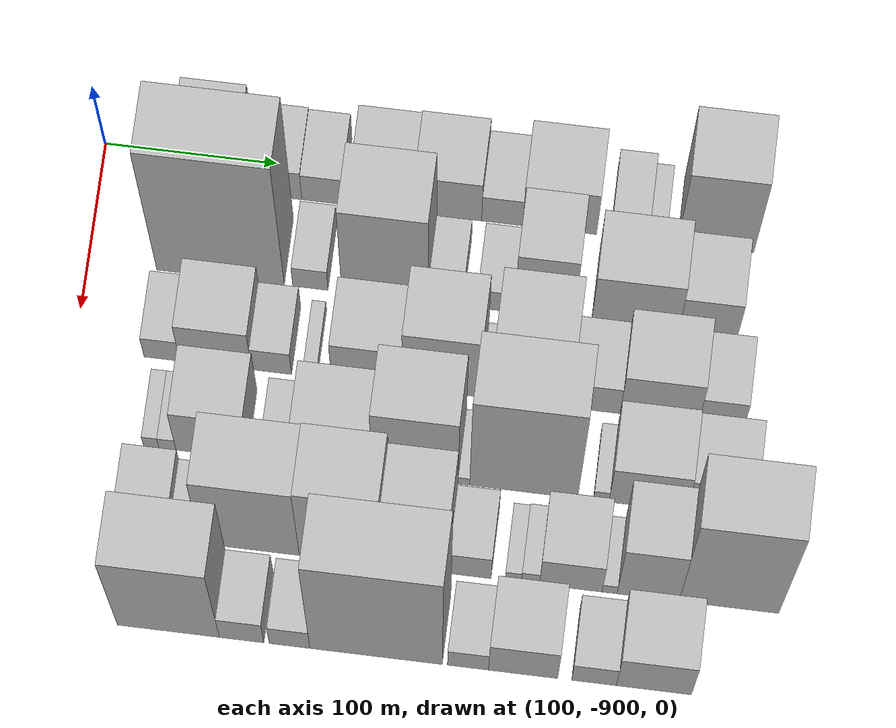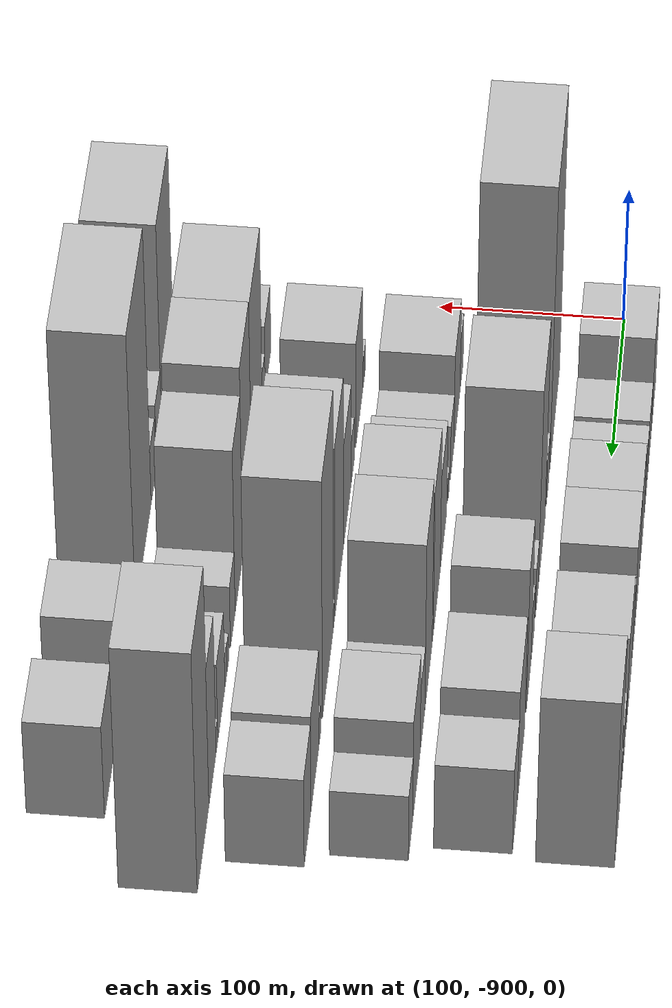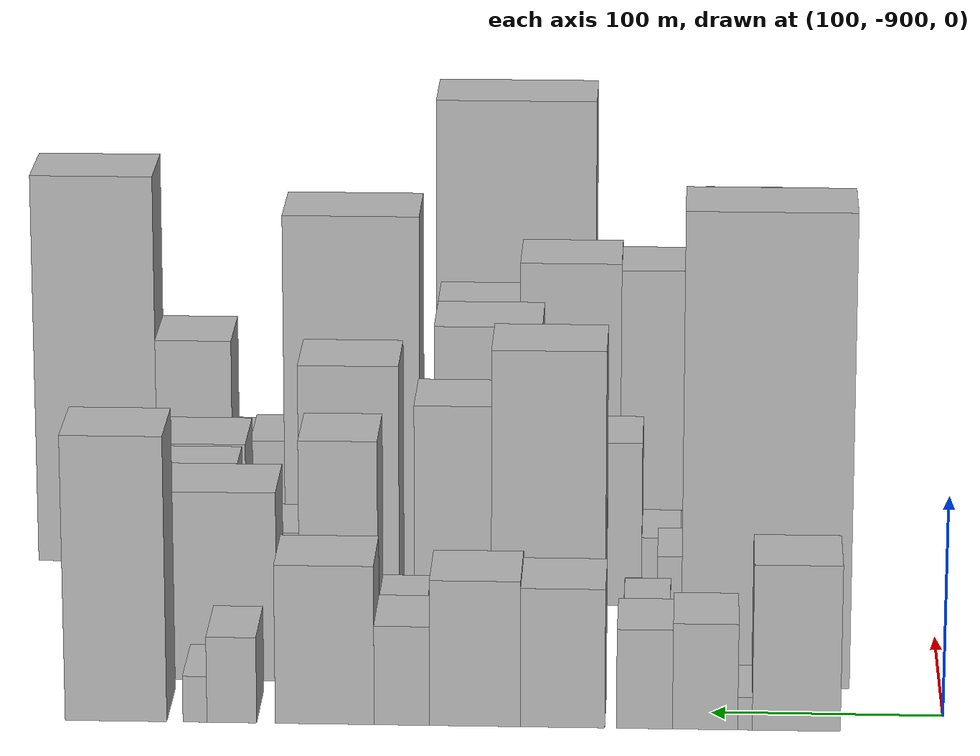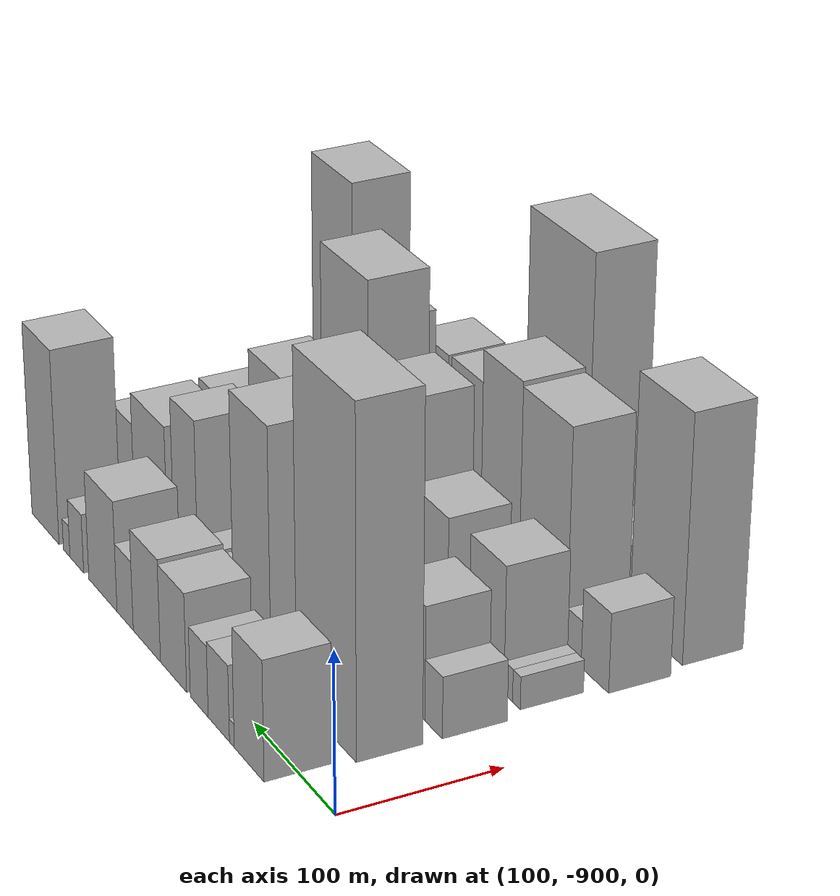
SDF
<sdf version="1.6">
 <world name="default">
  <model name="building_1">
   <static>1</static>
   <pose>100.0000 -836.1101 0 0.000000 0.000000 0.000000</pose>
   <link name="link">
    <pose>0 0 37.50 0 0 0</pose>
    <collision name="collision"><geometry><box><size>40.0000 37.7797 75.0000</size></box></geometry></collision>
    <visual name="visual">
     <cast_shadows>0</cast_shadows>
     <geometry><box><size>40.0000 37.7797 75.0000</size></box></geometry>
     <material>
      <script>
       <uri>model://HANNAS_wall/materials/scripts</uri>
       <uri>model://HANNAS_wall/materials/textures</uri>
       <name>vrc/HANNAS_wall</name>
      </script>
     </material>
    </visual>
   </link>
  </model>
  <model name="building_2">
   <static>1</static>
   <pose>100.0000 -814.1010 0 0.000000 0.000000 0.000000</pose>
   <link name="link">
    <pose>0 0 7.50 0 0 0</pose>
    <collision name="collision"><geometry><box><size>40.0000 6.2386 15.0000</size></box></geometry></collision>
    <visual name="visual">
     <cast_shadows>0</cast_shadows>
     <geometry><box><size>40.0000 6.2386 15.0000</size></box></geometry>
     <material>
      <script>
       <uri>model://HANNAS_wall/materials/scripts</uri>
       <uri>model://HANNAS_wall/materials/textures</uri>
       <name>vrc/HANNAS_wall</name>
      </script>
     </material>
    </visual>
   </link>
  </model>
  <model name="building_3">
   <static>1</static>
   <pose>100.0000 -797.0006 0 0.000000 0.000000 0.000000</pose>
   <link name="link">
    <pose>0 0 24.00 0 0 0</pose>
    <collision name="collision"><geometry><box><size>40.0000 27.9622 48.0000</size></box></geometry></collision>
    <visual name="visual">
     <cast_shadows>0</cast_shadows>
     <geometry><box><size>40.0000 27.9622 48.0000</size></box></geometry>
     <material>
      <script>
       <uri>model://HANNAS_wall/materials/scripts</uri>
       <uri>model://HANNAS_wall/materials/textures</uri>
       <name>vrc/HANNAS_wall</name>
      </script>
     </material>
    </visual>
   </link>
  </model>
  <model name="building_4">
   <static>1</static>
   <pose>100.0000 -770.9976 0 0.000000 0.000000 0.000000</pose>
   <link name="link">
    <pose>0 0 22.50 0 0 0</pose>
    <collision name="collision"><geometry><box><size>40.0000 24.0437 45.0000</size></box></geometry></collision>
    <visual name="visual">
     <cast_shadows>0</cast_shadows>
     <geometry><box><size>40.0000 24.0437 45.0000</size></box></geometry>
     <material>
      <script>
       <uri>model://HANNAS_wall/materials/scripts</uri>
       <uri>model://HANNAS_wall/materials/textures</uri>
       <name>vrc/HANNAS_wall</name>
      </script>
     </material>
    </visual>
   </link>
  </model>
  <model name="building_5">
   <static>1</static>
   <pose>100.0000 -735.8381 0 0.000000 0.000000 0.000000</pose>
   <link name="link">
    <pose>0 0 31.50 0 0 0</pose>
    <collision name="collision"><geometry><box><size>40.0000 36.2753 63.0000</size></box></geometry></collision>
    <visual name="visual">
     <cast_shadows>0</cast_shadows>
     <geometry><box><size>40.0000 36.2753 63.0000</size></box></geometry>
     <material>
      <script>
       <uri>model://HANNAS_wall/materials/scripts</uri>
       <uri>model://HANNAS_wall/materials/textures</uri>
       <name>vrc/HANNAS_wall</name>
      </script>
     </material>
    </visual>
   </link>
  </model>
  <model name="building_6">
   <static>1</static>
   <pose>100.0000 -698.1796 0 0.000000 0.000000 0.000000</pose>
   <link name="link">
    <pose>0 0 33.00 0 0 0</pose>
    <collision name="collision"><geometry><box><size>40.0000 39.0418 66.0000</size></box></geometry></collision>
    <visual name="visual">
     <cast_shadows>0</cast_shadows>
     <geometry><box><size>40.0000 39.0418 66.0000</size></box></geometry>
     <material>
      <script>
       <uri>model://HANNAS_wall/materials/scripts</uri>
       <uri>model://HANNAS_wall/materials/textures</uri>
       <name>vrc/HANNAS_wall</name>
      </script>
     </material>
    </visual>
   </link>
  </model>
  <model name="building_7">
   <static>1</static>
   <pose>100.0000 -666.7290 0 0.000000 0.000000 0.000000</pose>
   <link name="link">
    <pose>0 0 22.50 0 0 0</pose>
    <collision name="collision"><geometry><box><size>40.0000 23.8593 45.0000</size></box></geometry></collision>
    <visual name="visual">
     <cast_shadows>0</cast_shadows>
     <geometry><box><size>40.0000 23.8593 45.0000</size></box></geometry>
     <material>
      <script>
       <uri>model://HANNAS_wall/materials/scripts</uri>
       <uri>model://HANNAS_wall/materials/textures</uri>
       <name>vrc/HANNAS_wall</name>
      </script>
     </material>
    </visual>
   </link>
  </model>
  <model name="building_8">
   <static>1</static>
   <pose>100.0000 -633.4664 0 0.000000 0.000000 0.000000</pose>
   <link name="link">
    <pose>0 0 36.00 0 0 0</pose>
    <collision name="collision"><geometry><box><size>40.0000 42.6658 72.0000</size></box></geometry></collision>
    <visual name="visual">
     <cast_shadows>0</cast_shadows>
     <geometry><box><size>40.0000 42.6658 72.0000</size></box></geometry>
     <material>
      <script>
       <uri>model://HANNAS_wall/materials/scripts</uri>
       <uri>model://HANNAS_wall/materials/textures</uri>
       <name>vrc/HANNAS_wall</name>
      </script>
     </material>
    </visual>
   </link>
  </model>
  <model name="building_9">
   <static>1</static>
   <pose>100.0000 -593.3908 0 0.000000 0.000000 0.000000</pose>
   <link name="link">
    <pose>0 0 19.50 0 0 0</pose>
    <collision name="collision"><geometry><box><size>40.0000 21.4854 39.0000</size></box></geometry></collision>
    <visual name="visual">
     <cast_shadows>0</cast_shadows>
     <geometry><box><size>40.0000 21.4854 39.0000</size></box></geometry>
     <material>
      <script>
       <uri>model://HANNAS_wall/materials/scripts</uri>
       <uri>model://HANNAS_wall/materials/textures</uri>
       <name>vrc/HANNAS_wall</name>
      </script>
     </material>
    </visual>
   </link>
  </model>
  <model name="building_10">
   <static>1</static>
   <pose>100.0000 -577.4798 0 0.000000 0.000000 0.000000</pose>
   <link name="link">
    <pose>0 0 10.50 0 0 0</pose>
    <collision name="collision"><geometry><box><size>40.0000 10.3366 21.0000</size></box></geometry></collision>
    <visual name="visual">
     <cast_shadows>0</cast_shadows>
     <geometry><box><size>40.0000 10.3366 21.0000</size></box></geometry>
     <material>
      <script>
       <uri>model://HANNAS_wall/materials/scripts</uri>
       <uri>model://HANNAS_wall/materials/textures</uri>
       <name>vrc/HANNAS_wall</name>
      </script>
     </material>
    </visual>
   </link>
  </model>
  <model name="building_11">
   <static>1</static>
   <pose>100.0000 -543.3504 0 0.000000 0.000000 0.000000</pose>
   <link name="link">
    <pose>0 0 64.50 0 0 0</pose>
    <collision name="collision"><geometry><box><size>40.0000 43.9221 129.0000</size></box></geometry></collision>
    <visual name="visual">
     <cast_shadows>0</cast_shadows>
     <geometry><box><size>40.0000 43.9221 129.0000</size></box></geometry>
     <material>
      <script>
       <uri>model://HANNAS_wall/materials/scripts</uri>
       <uri>model://HANNAS_wall/materials/textures</uri>
       <name>vrc/HANNAS_wall</name>
      </script>
     </material>
    </visual>
   </link>
  </model>
  <model name="building_50">
   <static>1</static>
   <pose>152.0000 -823.1625 0 0.000000 0.000000 0.000000</pose>
   <link name="link">
    <pose>0 0 108.00 0 0 0</pose>
    <collision name="collision"><geometry><box><size>40.0000 73.6750 216.0000</size></box></geometry></collision>
    <visual name="visual">
     <cast_shadows>0</cast_shadows>
     <geometry><box><size>40.0000 73.6750 216.0000</size></box></geometry>
     <material>
      <script>
       <uri>model://HANNAS_wall/materials/scripts</uri>
       <uri>model://HANNAS_wall/materials/textures</uri>
       <name>vrc/HANNAS_wall</name>
      </script>
     </material>
    </visual>
   </link>
  </model>
  <model name="building_51">
   <static>1</static>
   <pose>152.0000 -771.1802 0 0.000000 0.000000 0.000000</pose>
   <link name="link">
    <pose>0 0 18.00 0 0 0</pose>
    <collision name="collision"><geometry><box><size>40.0000 20.2896 36.0000</size></box></geometry></collision>
    <visual name="visual">
     <cast_shadows>0</cast_shadows>
     <geometry><box><size>40.0000 20.2896 36.0000</size></box></geometry>
     <material>
      <script>
       <uri>model://HANNAS_wall/materials/scripts</uri>
       <uri>model://HANNAS_wall/materials/textures</uri>
       <name>vrc/HANNAS_wall</name>
      </script>
     </material>
    </visual>
   </link>
  </model>
  <model name="building_52">
   <static>1</static>
   <pose>152.0000 -728.1280 0 0.000000 0.000000 0.000000</pose>
   <link name="link">
    <pose>0 0 76.50 0 0 0</pose>
    <collision name="collision"><geometry><box><size>40.0000 49.8148 153.0000</size></box></geometry></collision>
    <visual name="visual">
     <cast_shadows>0</cast_shadows>
     <geometry><box><size>40.0000 49.8148 153.0000</size></box></geometry>
     <material>
      <script>
       <uri>model://HANNAS_wall/materials/scripts</uri>
       <uri>model://HANNAS_wall/materials/textures</uri>
       <name>vrc/HANNAS_wall</name>
      </script>
     </material>
    </visual>
   </link>
  </model>
  <model name="building_53">
   <static>1</static>
   <pose>152.0000 -693.1054 0 0.000000 0.000000 0.000000</pose>
   <link name="link">
    <pose>0 0 19.50 0 0 0</pose>
    <collision name="collision"><geometry><box><size>40.0000 20.2304 39.0000</size></box></geometry></collision>
    <visual name="visual">
     <cast_shadows>0</cast_shadows>
     <geometry><box><size>40.0000 20.2304 39.0000</size></box></geometry>
     <material>
      <script>
       <uri>model://HANNAS_wall/materials/scripts</uri>
       <uri>model://HANNAS_wall/materials/textures</uri>
       <name>vrc/HANNAS_wall</name>
      </script>
     </material>
    </visual>
   </link>
  </model>
  <model name="building_54">
   <static>1</static>
   <pose>152.0000 -664.2839 0 0.000000 0.000000 0.000000</pose>
   <link name="link">
    <pose>0 0 18.00 0 0 0</pose>
    <collision name="collision"><geometry><box><size>40.0000 21.4125 36.0000</size></box></geometry></collision>
    <visual name="visual">
     <cast_shadows>0</cast_shadows>
     <geometry><box><size>40.0000 21.4125 36.0000</size></box></geometry>
     <material>
      <script>
       <uri>model://HANNAS_wall/materials/scripts</uri>
       <uri>model://HANNAS_wall/materials/textures</uri>
       <name>vrc/HANNAS_wall</name>
      </script>
     </material>
    </visual>
   </link>
  </model>
  <model name="building_55">
   <static>1</static>
   <pose>152.0000 -636.3601 0 0.000000 0.000000 0.000000</pose>
   <link name="link">
    <pose>0 0 55.50 0 0 0</pose>
    <collision name="collision"><geometry><box><size>40.0000 34.4351 111.0000</size></box></geometry></collision>
    <visual name="visual">
     <cast_shadows>0</cast_shadows>
     <geometry><box><size>40.0000 34.4351 111.0000</size></box></geometry>
     <material>
      <script>
       <uri>model://HANNAS_wall/materials/scripts</uri>
       <uri>model://HANNAS_wall/materials/textures</uri>
       <name>vrc/HANNAS_wall</name>
      </script>
     </material>
    </visual>
   </link>
  </model>
  <model name="building_56">
   <static>1</static>
   <pose>152.0000 -584.1298 0 0.000000 0.000000 0.000000</pose>
   <link name="link">
    <pose>0 0 43.50 0 0 0</pose>
    <collision name="collision"><geometry><box><size>40.0000 50.0255 87.0000</size></box></geometry></collision>
    <visual name="visual">
     <cast_shadows>0</cast_shadows>
     <geometry><box><size>40.0000 50.0255 87.0000</size></box></geometry>
     <material>
      <script>
       <uri>model://HANNAS_wall/materials/scripts</uri>
       <uri>model://HANNAS_wall/materials/textures</uri>
       <name>vrc/HANNAS_wall</name>
      </script>
     </material>
    </visual>
   </link>
  </model>
  <model name="building_57">
   <static>1</static>
   <pose>152.0000 -542.3534 0 0.000000 0.000000 0.000000</pose>
   <link name="link">
    <pose>0 0 33.00 0 0 0</pose>
    <collision name="collision"><geometry><box><size>40.0000 33.5274 66.0000</size></box></geometry></collision>
    <visual name="visual">
     <cast_shadows>0</cast_shadows>
     <geometry><box><size>40.0000 33.5274 66.0000</size></box></geometry>
     <material>
      <script>
       <uri>model://HANNAS_wall/materials/scripts</uri>
       <uri>model://HANNAS_wall/materials/textures</uri>
       <name>vrc/HANNAS_wall</name>
      </script>
     </material>
    </visual>
   </link>
  </model>
  <model name="building_102">
   <static>1</static>
   <pose>204.0000 -849.7904 0 0.000000 0.000000 0.000000</pose>
   <link name="link">
    <pose>0 0 19.50 0 0 0</pose>
    <collision name="collision"><geometry><box><size>40.0000 20.4192 39.0000</size></box></geometry></collision>
    <visual name="visual">
     <cast_shadows>0</cast_shadows>
     <geometry><box><size>40.0000 20.4192 39.0000</size></box></geometry>
     <material>
      <script>
       <uri>model://HANNAS_wall/materials/scripts</uri>
       <uri>model://HANNAS_wall/materials/textures</uri>
       <name>vrc/HANNAS_wall</name>
      </script>
     </material>
    </visual>
   </link>
  </model>
  <model name="building_103">
   <static>1</static>
   <pose>204.0000 -818.8654 0 0.000000 0.000000 0.000000</pose>
   <link name="link">
    <pose>0 0 36.00 0 0 0</pose>
    <collision name="collision"><geometry><box><size>40.0000 41.4309 72.0000</size></box></geometry></collision>
    <visual name="visual">
     <cast_shadows>0</cast_shadows>
     <geometry><box><size>40.0000 41.4309 72.0000</size></box></geometry>
     <material>
      <script>
       <uri>model://HANNAS_wall/materials/scripts</uri>
       <uri>model://HANNAS_wall/materials/textures</uri>
       <name>vrc/HANNAS_wall</name>
      </script>
     </material>
    </visual>
   </link>
  </model>
  <model name="building_104">
   <static>1</static>
   <pose>204.0000 -786.6893 0 0.000000 0.000000 0.000000</pose>
   <link name="link">
    <pose>0 0 21.00 0 0 0</pose>
    <collision name="collision"><geometry><box><size>40.0000 22.9213 42.0000</size></box></geometry></collision>
    <visual name="visual">
     <cast_shadows>0</cast_shadows>
     <geometry><box><size>40.0000 22.9213 42.0000</size></box></geometry>
     <material>
      <script>
       <uri>model://HANNAS_wall/materials/scripts</uri>
       <uri>model://HANNAS_wall/materials/textures</uri>
       <name>vrc/HANNAS_wall</name>
      </script>
     </material>
    </visual>
   </link>
  </model>
  <model name="building_105">
   <static>1</static>
   <pose>204.0000 -764.2685 0 0.000000 0.000000 0.000000</pose>
   <link name="link">
    <pose>0 0 9.00 0 0 0</pose>
    <collision name="collision"><geometry><box><size>40.0000 7.9204 18.0000</size></box></geometry></collision>
    <visual name="visual">
     <cast_shadows>0</cast_shadows>
     <geometry><box><size>40.0000 7.9204 18.0000</size></box></geometry>
     <material>
      <script>
       <uri>model://HANNAS_wall/materials/scripts</uri>
       <uri>model://HANNAS_wall/materials/textures</uri>
       <name>vrc/HANNAS_wall</name>
      </script>
     </material>
    </visual>
   </link>
  </model>
  <model name="building_106">
   <static>1</static>
   <pose>204.0000 -731.7909 0 0.000000 0.000000 0.000000</pose>
   <link name="link">
    <pose>0 0 36.00 0 0 0</pose>
    <collision name="collision"><geometry><box><size>40.0000 41.0349 72.0000</size></box></geometry></collision>
    <visual name="visual">
     <cast_shadows>0</cast_shadows>
     <geometry><box><size>40.0000 41.0349 72.0000</size></box></geometry>
     <material>
      <script>
       <uri>model://HANNAS_wall/materials/scripts</uri>
       <uri>model://HANNAS_wall/materials/textures</uri>
       <name>vrc/HANNAS_wall</name>
      </script>
     </material>
    </visual>
   </link>
  </model>
  <model name="building_107">
   <static>1</static>
   <pose>204.0000 -689.0931 0 0.000000 0.000000 0.000000</pose>
   <link name="link">
    <pose>0 0 55.50 0 0 0</pose>
    <collision name="collision"><geometry><box><size>40.0000 44.3606 111.0000</size></box></geometry></collision>
    <visual name="visual">
     <cast_shadows>0</cast_shadows>
     <geometry><box><size>40.0000 44.3606 111.0000</size></box></geometry>
     <material>
      <script>
       <uri>model://HANNAS_wall/materials/scripts</uri>
       <uri>model://HANNAS_wall/materials/textures</uri>
       <name>vrc/HANNAS_wall</name>
      </script>
     </material>
    </visual>
   </link>
  </model>
  <model name="building_108">
   <static>1</static>
   <pose>204.0000 -663.5158 0 0.000000 0.000000 0.000000</pose>
   <link name="link">
    <pose>0 0 7.50 0 0 0</pose>
    <collision name="collision"><geometry><box><size>40.0000 6.7940 15.0000</size></box></geometry></collision>
    <visual name="visual">
     <cast_shadows>0</cast_shadows>
     <geometry><box><size>40.0000 6.7940 15.0000</size></box></geometry>
     <material>
      <script>
       <uri>model://HANNAS_wall/materials/scripts</uri>
       <uri>model://HANNAS_wall/materials/textures</uri>
       <name>vrc/HANNAS_wall</name>
      </script>
     </material>
    </visual>
   </link>
  </model>
  <model name="building_109">
   <static>1</static>
   <pose>204.0000 -637.7748 0 0.000000 0.000000 0.000000</pose>
   <link name="link">
    <pose>0 0 64.50 0 0 0</pose>
    <collision name="collision"><geometry><box><size>40.0000 44.6881 129.0000</size></box></geometry></collision>
    <visual name="visual">
     <cast_shadows>0</cast_shadows>
     <geometry><box><size>40.0000 44.6881 129.0000</size></box></geometry>
     <material>
      <script>
       <uri>model://HANNAS_wall/materials/scripts</uri>
       <uri>model://HANNAS_wall/materials/textures</uri>
       <name>vrc/HANNAS_wall</name>
      </script>
     </material>
    </visual>
   </link>
  </model>
  <model name="building_110">
   <static>1</static>
   <pose>204.0000 -601.2230 0 0.000000 0.000000 0.000000</pose>
   <link name="link">
    <pose>0 0 25.50 0 0 0</pose>
    <collision name="collision"><geometry><box><size>40.0000 28.4156 51.0000</size></box></geometry></collision>
    <visual name="visual">
     <cast_shadows>0</cast_shadows>
     <geometry><box><size>40.0000 28.4156 51.0000</size></box></geometry>
     <material>
      <script>
       <uri>model://HANNAS_wall/materials/scripts</uri>
       <uri>model://HANNAS_wall/materials/textures</uri>
       <name>vrc/HANNAS_wall</name>
      </script>
     </material>
    </visual>
   </link>
  </model>
  <model name="building_111">
   <static>1</static>
   <pose>204.0000 -564.5349 0 0.000000 0.000000 0.000000</pose>
   <link name="link">
    <pose>0 0 39.00 0 0 0</pose>
    <collision name="collision"><geometry><box><size>40.0000 44.9606 78.0000</size></box></geometry></collision>
    <visual name="visual">
     <cast_shadows>0</cast_shadows>
     <geometry><box><size>40.0000 44.9606 78.0000</size></box></geometry>
     <material>
      <script>
       <uri>model://HANNAS_wall/materials/scripts</uri>
       <uri>model://HANNAS_wall/materials/textures</uri>
       <name>vrc/HANNAS_wall</name>
      </script>
     </material>
    </visual>
   </link>
  </model>
  <model name="building_112">
   <static>1</static>
   <pose>204.0000 -529.2048 0 0.000000 0.000000 0.000000</pose>
   <link name="link">
    <pose>0 0 25.50 0 0 0</pose>
    <collision name="collision"><geometry><box><size>40.0000 25.6997 51.0000</size></box></geometry></collision>
    <visual name="visual">
     <cast_shadows>0</cast_shadows>
     <geometry><box><size>40.0000 25.6997 51.0000</size></box></geometry>
     <material>
      <script>
       <uri>model://HANNAS_wall/materials/scripts</uri>
       <uri>model://HANNAS_wall/materials/textures</uri>
       <name>vrc/HANNAS_wall</name>
      </script>
     </material>
    </visual>
   </link>
  </model>
  <model name="building_154">
   <static>1</static>
   <pose>256.0000 -848.6056 0 0.000000 0.000000 0.000000</pose>
   <link name="link">
    <pose>0 0 10.50 0 0 0</pose>
    <collision name="collision"><geometry><box><size>40.0000 8.7887 21.0000</size></box></geometry></collision>
    <visual name="visual">
     <cast_shadows>0</cast_shadows>
     <geometry><box><size>40.0000 8.7887 21.0000</size></box></geometry>
     <material>
      <script>
       <uri>model://HANNAS_wall/materials/scripts</uri>
       <uri>model://HANNAS_wall/materials/textures</uri>
       <name>vrc/HANNAS_wall</name>
      </script>
     </material>
    </visual>
   </link>
  </model>
  <model name="building_155">
   <static>1</static>
   <pose>256.0000 -839.3177 0 0.000000 0.000000 0.000000</pose>
   <link name="link">
    <pose>0 0 10.50 0 0 0</pose>
    <collision name="collision"><geometry><box><size>40.0000 9.7872 21.0000</size></box></geometry></collision>
    <visual name="visual">
     <cast_shadows>0</cast_shadows>
     <geometry><box><size>40.0000 9.7872 21.0000</size></box></geometry>
     <material>
      <script>
       <uri>model://HANNAS_wall/materials/scripts</uri>
       <uri>model://HANNAS_wall/materials/textures</uri>
       <name>vrc/HANNAS_wall</name>
      </script>
     </material>
    </visual>
   </link>
  </model>
  <model name="building_156">
   <static>1</static>
   <pose>256.0000 -813.9608 0 0.000000 0.000000 0.000000</pose>
   <link name="link">
    <pose>0 0 40.50 0 0 0</pose>
    <collision name="collision"><geometry><box><size>40.0000 40.9265 81.0000</size></box></geometry></collision>
    <visual name="visual">
     <cast_shadows>0</cast_shadows>
     <geometry><box><size>40.0000 40.9265 81.0000</size></box></geometry>
     <material>
      <script>
       <uri>model://HANNAS_wall/materials/scripts</uri>
       <uri>model://HANNAS_wall/materials/textures</uri>
       <name>vrc/HANNAS_wall</name>
      </script>
     </material>
    </visual>
   </link>
  </model>
  <model name="building_157">
   <static>1</static>
   <pose>256.0000 -776.6202 0 0.000000 0.000000 0.000000</pose>
   <link name="link">
    <pose>0 0 16.50 0 0 0</pose>
    <collision name="collision"><geometry><box><size>40.0000 17.7547 33.0000</size></box></geometry></collision>
    <visual name="visual">
     <cast_shadows>0</cast_shadows>
     <geometry><box><size>40.0000 17.7547 33.0000</size></box></geometry>
     <material>
      <script>
       <uri>model://HANNAS_wall/materials/scripts</uri>
       <uri>model://HANNAS_wall/materials/textures</uri>
       <name>vrc/HANNAS_wall</name>
      </script>
     </material>
    </visual>
   </link>
  </model>
  <model name="building_158">
   <static>1</static>
   <pose>256.0000 -744.9824 0 0.000000 0.000000 0.000000</pose>
   <link name="link">
    <pose>0 0 39.00 0 0 0</pose>
    <collision name="collision"><geometry><box><size>40.0000 45.5210 78.0000</size></box></geometry></collision>
    <visual name="visual">
     <cast_shadows>0</cast_shadows>
     <geometry><box><size>40.0000 45.5210 78.0000</size></box></geometry>
     <material>
      <script>
       <uri>model://HANNAS_wall/materials/scripts</uri>
       <uri>model://HANNAS_wall/materials/textures</uri>
       <name>vrc/HANNAS_wall</name>
      </script>
     </material>
    </visual>
   </link>
  </model>
  <model name="building_159">
   <static>1</static>
   <pose>256.0000 -697.8295 0 0.000000 0.000000 0.000000</pose>
   <link name="link">
    <pose>0 0 66.00 0 0 0</pose>
    <collision name="collision"><geometry><box><size>40.0000 48.7846 132.0000</size></box></geometry></collision>
    <visual name="visual">
     <cast_shadows>0</cast_shadows>
     <geometry><box><size>40.0000 48.7846 132.0000</size></box></geometry>
     <material>
      <script>
       <uri>model://HANNAS_wall/materials/scripts</uri>
       <uri>model://HANNAS_wall/materials/textures</uri>
       <name>vrc/HANNAS_wall</name>
      </script>
     </material>
    </visual>
   </link>
  </model>
  <model name="building_160">
   <static>1</static>
   <pose>256.0000 -670.1234 0 0.000000 0.000000 0.000000</pose>
   <link name="link">
    <pose>0 0 7.50 0 0 0</pose>
    <collision name="collision"><geometry><box><size>40.0000 6.6277 15.0000</size></box></geometry></collision>
    <visual name="visual">
     <cast_shadows>0</cast_shadows>
     <geometry><box><size>40.0000 6.6277 15.0000</size></box></geometry>
     <material>
      <script>
       <uri>model://HANNAS_wall/materials/scripts</uri>
       <uri>model://HANNAS_wall/materials/textures</uri>
       <name>vrc/HANNAS_wall</name>
      </script>
     </material>
    </visual>
   </link>
  </model>
  <model name="building_161">
   <static>1</static>
   <pose>256.0000 -636.0739 0 0.000000 0.000000 0.000000</pose>
   <link name="link">
    <pose>0 0 91.50 0 0 0</pose>
    <collision name="collision"><geometry><box><size>40.0000 61.4714 183.0000</size></box></geometry></collision>
    <visual name="visual">
     <cast_shadows>0</cast_shadows>
     <geometry><box><size>40.0000 61.4714 183.0000</size></box></geometry>
     <material>
      <script>
       <uri>model://HANNAS_wall/materials/scripts</uri>
       <uri>model://HANNAS_wall/materials/textures</uri>
       <name>vrc/HANNAS_wall</name>
      </script>
     </material>
    </visual>
   </link>
  </model>
  <model name="building_162">
   <static>1</static>
   <pose>256.0000 -591.9308 0 0.000000 0.000000 0.000000</pose>
   <link name="link">
    <pose>0 0 10.50 0 0 0</pose>
    <collision name="collision"><geometry><box><size>40.0000 8.8147 21.0000</size></box></geometry></collision>
    <visual name="visual">
     <cast_shadows>0</cast_shadows>
     <geometry><box><size>40.0000 8.8147 21.0000</size></box></geometry>
     <material>
      <script>
       <uri>model://HANNAS_wall/materials/scripts</uri>
       <uri>model://HANNAS_wall/materials/textures</uri>
       <name>vrc/HANNAS_wall</name>
      </script>
     </material>
    </visual>
   </link>
  </model>
  <model name="building_163">
   <static>1</static>
   <pose>256.0000 -565.4018 0 0.000000 0.000000 0.000000</pose>
   <link name="link">
    <pose>0 0 37.50 0 0 0</pose>
    <collision name="collision"><geometry><box><size>40.0000 44.2433 75.0000</size></box></geometry></collision>
    <visual name="visual">
     <cast_shadows>0</cast_shadows>
     <geometry><box><size>40.0000 44.2433 75.0000</size></box></geometry>
     <material>
      <script>
       <uri>model://HANNAS_wall/materials/scripts</uri>
       <uri>model://HANNAS_wall/materials/textures</uri>
       <name>vrc/HANNAS_wall</name>
      </script>
     </material>
    </visual>
   </link>
  </model>
  <model name="building_164">
   <static>1</static>
   <pose>256.0000 -525.3574 0 0.000000 0.000000 0.000000</pose>
   <link name="link">
    <pose>0 0 34.50 0 0 0</pose>
    <collision name="collision"><geometry><box><size>40.0000 35.8454 69.0000</size></box></geometry></collision>
    <visual name="visual">
     <cast_shadows>0</cast_shadows>
     <geometry><box><size>40.0000 35.8454 69.0000</size></box></geometry>
     <material>
      <script>
       <uri>model://HANNAS_wall/materials/scripts</uri>
       <uri>model://HANNAS_wall/materials/textures</uri>
       <name>vrc/HANNAS_wall</name>
      </script>
     </material>
    </visual>
   </link>
  </model>
  <model name="building_210">
   <static>1</static>
   <pose>308.0000 -844.7728 0 0.000000 0.000000 0.000000</pose>
   <link name="link">
    <pose>0 0 25.50 0 0 0</pose>
    <collision name="collision"><geometry><box><size>40.0000 30.4543 51.0000</size></box></geometry></collision>
    <visual name="visual">
     <cast_shadows>0</cast_shadows>
     <geometry><box><size>40.0000 30.4543 51.0000</size></box></geometry>
     <material>
      <script>
       <uri>model://HANNAS_wall/materials/scripts</uri>
       <uri>model://HANNAS_wall/materials/textures</uri>
       <name>vrc/HANNAS_wall</name>
      </script>
     </material>
    </visual>
   </link>
  </model>
  <model name="building_211">
   <static>1</static>
   <pose>308.0000 -821.2260 0 0.000000 0.000000 0.000000</pose>
   <link name="link">
    <pose>0 0 15.00 0 0 0</pose>
    <collision name="collision"><geometry><box><size>40.0000 16.6393 30.0000</size></box></geometry></collision>
    <visual name="visual">
     <cast_shadows>0</cast_shadows>
     <geometry><box><size>40.0000 16.6393 30.0000</size></box></geometry>
     <material>
      <script>
       <uri>model://HANNAS_wall/materials/scripts</uri>
       <uri>model://HANNAS_wall/materials/textures</uri>
       <name>vrc/HANNAS_wall</name>
      </script>
     </material>
    </visual>
   </link>
  </model>
  <model name="building_212">
   <static>1</static>
   <pose>308.0000 -784.9820 0 0.000000 0.000000 0.000000</pose>
   <link name="link">
    <pose>0 0 72.00 0 0 0</pose>
    <collision name="collision"><geometry><box><size>40.0000 55.8489 144.0000</size></box></geometry></collision>
    <visual name="visual">
     <cast_shadows>0</cast_shadows>
     <geometry><box><size>40.0000 55.8489 144.0000</size></box></geometry>
     <material>
      <script>
       <uri>model://HANNAS_wall/materials/scripts</uri>
       <uri>model://HANNAS_wall/materials/textures</uri>
       <name>vrc/HANNAS_wall</name>
      </script>
     </material>
    </visual>
   </link>
  </model>
  <model name="building_213">
   <static>1</static>
   <pose>308.0000 -733.8337 0 0.000000 0.000000 0.000000</pose>
   <link name="link">
    <pose>0 0 73.50 0 0 0</pose>
    <collision name="collision"><geometry><box><size>40.0000 46.4477 147.0000</size></box></geometry></collision>
    <visual name="visual">
     <cast_shadows>0</cast_shadows>
     <geometry><box><size>40.0000 46.4477 147.0000</size></box></geometry>
     <material>
      <script>
       <uri>model://HANNAS_wall/materials/scripts</uri>
       <uri>model://HANNAS_wall/materials/textures</uri>
       <name>vrc/HANNAS_wall</name>
      </script>
     </material>
    </visual>
   </link>
  </model>
  <model name="building_214">
   <static>1</static>
   <pose>308.0000 -691.5053 0 0.000000 0.000000 0.000000</pose>
   <link name="link">
    <pose>0 0 63.00 0 0 0</pose>
    <collision name="collision"><geometry><box><size>40.0000 38.2090 126.0000</size></box></geometry></collision>
    <visual name="visual">
     <cast_shadows>0</cast_shadows>
     <geometry><box><size>40.0000 38.2090 126.0000</size></box></geometry>
     <material>
      <script>
       <uri>model://HANNAS_wall/materials/scripts</uri>
       <uri>model://HANNAS_wall/materials/textures</uri>
       <name>vrc/HANNAS_wall</name>
      </script>
     </material>
    </visual>
   </link>
  </model>
  <model name="building_215">
   <static>1</static>
   <pose>308.0000 -660.3969 0 0.000000 0.000000 0.000000</pose>
   <link name="link">
    <pose>0 0 24.00 0 0 0</pose>
    <collision name="collision"><geometry><box><size>40.0000 24.0078 48.0000</size></box></geometry></collision>
    <visual name="visual">
     <cast_shadows>0</cast_shadows>
     <geometry><box><size>40.0000 24.0078 48.0000</size></box></geometry>
     <material>
      <script>
       <uri>model://HANNAS_wall/materials/scripts</uri>
       <uri>model://HANNAS_wall/materials/textures</uri>
       <name>vrc/HANNAS_wall</name>
      </script>
     </material>
    </visual>
   </link>
  </model>
  <model name="building_216">
   <static>1</static>
   <pose>308.0000 -635.8015 0 0.000000 0.000000 0.000000</pose>
   <link name="link">
    <pose>0 0 10.50 0 0 0</pose>
    <collision name="collision"><geometry><box><size>40.0000 9.1830 21.0000</size></box></geometry></collision>
    <visual name="visual">
     <cast_shadows>0</cast_shadows>
     <geometry><box><size>40.0000 9.1830 21.0000</size></box></geometry>
     <material>
      <script>
       <uri>model://HANNAS_wall/materials/scripts</uri>
       <uri>model://HANNAS_wall/materials/textures</uri>
       <name>vrc/HANNAS_wall</name>
      </script>
     </material>
    </visual>
   </link>
  </model>
  <model name="building_217">
   <static>1</static>
   <pose>308.0000 -626.0807 0 0.000000 0.000000 0.000000</pose>
   <link name="link">
    <pose>0 0 12.00 0 0 0</pose>
    <collision name="collision"><geometry><box><size>40.0000 10.2586 24.0000</size></box></geometry></collision>
    <visual name="visual">
     <cast_shadows>0</cast_shadows>
     <geometry><box><size>40.0000 10.2586 24.0000</size></box></geometry>
     <material>
      <script>
       <uri>model://HANNAS_wall/materials/scripts</uri>
       <uri>model://HANNAS_wall/materials/textures</uri>
       <name>vrc/HANNAS_wall</name>
      </script>
     </material>
    </visual>
   </link>
  </model>
  <model name="building_218">
   <static>1</static>
   <pose>308.0000 -603.2431 0 0.000000 0.000000 0.000000</pose>
   <link name="link">
    <pose>0 0 30.00 0 0 0</pose>
    <collision name="collision"><geometry><box><size>40.0000 35.4167 60.0000</size></box></geometry></collision>
    <visual name="visual">
     <cast_shadows>0</cast_shadows>
     <geometry><box><size>40.0000 35.4167 60.0000</size></box></geometry>
     <material>
      <script>
       <uri>model://HANNAS_wall/materials/scripts</uri>
       <uri>model://HANNAS_wall/materials/textures</uri>
       <name>vrc/HANNAS_wall</name>
      </script>
     </material>
    </visual>
   </link>
  </model>
  <model name="building_219">
   <static>1</static>
   <pose>308.0000 -581.3378 0 0.000000 0.000000 0.000000</pose>
   <link name="link">
    <pose>0 0 9.00 0 0 0</pose>
    <collision name="collision"><geometry><box><size>40.0000 8.3937 18.0000</size></box></geometry></collision>
    <visual name="visual">
     <cast_shadows>0</cast_shadows>
     <geometry><box><size>40.0000 8.3937 18.0000</size></box></geometry>
     <material>
      <script>
       <uri>model://HANNAS_wall/materials/scripts</uri>
       <uri>model://HANNAS_wall/materials/textures</uri>
       <name>vrc/HANNAS_wall</name>
      </script>
     </material>
    </visual>
   </link>
  </model>
  <model name="building_220">
   <static>1</static>
   <pose>308.0000 -559.5844 0 0.000000 0.000000 0.000000</pose>
   <link name="link">
    <pose>0 0 54.00 0 0 0</pose>
    <collision name="collision"><geometry><box><size>40.0000 35.1132 108.0000</size></box></geometry></collision>
    <visual name="visual">
     <cast_shadows>0</cast_shadows>
     <geometry><box><size>40.0000 35.1132 108.0000</size></box></geometry>
     <material>
      <script>
       <uri>model://HANNAS_wall/materials/scripts</uri>
       <uri>model://HANNAS_wall/materials/textures</uri>
       <name>vrc/HANNAS_wall</name>
      </script>
     </material>
    </visual>
   </link>
  </model>
  <model name="building_221">
   <static>1</static>
   <pose>308.0000 -513.9575 0 0.000000 0.000000 0.000000</pose>
   <link name="link">
    <pose>0 0 93.00 0 0 0</pose>
    <collision name="collision"><geometry><box><size>40.0000 56.1404 186.0000</size></box></geometry></collision>
    <visual name="visual">
     <cast_shadows>0</cast_shadows>
     <geometry><box><size>40.0000 56.1404 186.0000</size></box></geometry>
     <material>
      <script>
       <uri>model://HANNAS_wall/materials/scripts</uri>
       <uri>model://HANNAS_wall/materials/textures</uri>
       <name>vrc/HANNAS_wall</name>
      </script>
     </material>
    </visual>
   </link>
  </model>
  <model name="building_258">
   <static>1</static>
   <pose>360.0000 -824.1662 0 0.000000 0.000000 0.000000</pose>
   <link name="link">
    <pose>0 0 79.50 0 0 0</pose>
    <collision name="collision"><geometry><box><size>40.0000 57.6676 159.0000</size></box></geometry></collision>
    <visual name="visual">
     <cast_shadows>0</cast_shadows>
     <geometry><box><size>40.0000 57.6676 159.0000</size></box></geometry>
     <material>
      <script>
       <uri>model://HANNAS_wall/materials/scripts</uri>
       <uri>model://HANNAS_wall/materials/textures</uri>
       <name>vrc/HANNAS_wall</name>
      </script>
     </material>
    </visual>
   </link>
  </model>
  <model name="building_259">
   <static>1</static>
   <pose>360.0000 -782.7710 0 0.000000 0.000000 0.000000</pose>
   <link name="link">
    <pose>0 0 24.00 0 0 0</pose>
    <collision name="collision"><geometry><box><size>40.0000 25.1228 48.0000</size></box></geometry></collision>
    <visual name="visual">
     <cast_shadows>0</cast_shadows>
     <geometry><box><size>40.0000 25.1228 48.0000</size></box></geometry>
     <material>
      <script>
       <uri>model://HANNAS_wall/materials/scripts</uri>
       <uri>model://HANNAS_wall/materials/textures</uri>
       <name>vrc/HANNAS_wall</name>
      </script>
     </material>
    </visual>
   </link>
  </model>
  <model name="building_260">
   <static>1</static>
   <pose>360.0000 -755.7266 0 0.000000 0.000000 0.000000</pose>
   <link name="link">
    <pose>0 0 21.00 0 0 0</pose>
    <collision name="collision"><geometry><box><size>40.0000 22.9660 42.0000</size></box></geometry></collision>
    <visual name="visual">
     <cast_shadows>0</cast_shadows>
     <geometry><box><size>40.0000 22.9660 42.0000</size></box></geometry>
     <material>
      <script>
       <uri>model://HANNAS_wall/materials/scripts</uri>
       <uri>model://HANNAS_wall/materials/textures</uri>
       <name>vrc/HANNAS_wall</name>
      </script>
     </material>
    </visual>
   </link>
  </model>
  <model name="building_261">
   <static>1</static>
   <pose>360.0000 -706.9498 0 0.000000 0.000000 0.000000</pose>
   <link name="link">
    <pose>0 0 105.00 0 0 0</pose>
    <collision name="collision"><geometry><box><size>40.0000 74.5876 210.0000</size></box></geometry></collision>
    <visual name="visual">
     <cast_shadows>0</cast_shadows>
     <geometry><box><size>40.0000 74.5876 210.0000</size></box></geometry>
     <material>
      <script>
       <uri>model://HANNAS_wall/materials/scripts</uri>
       <uri>model://HANNAS_wall/materials/textures</uri>
       <name>vrc/HANNAS_wall</name>
      </script>
     </material>
    </visual>
   </link>
  </model>
  <model name="building_262">
   <static>1</static>
   <pose>360.0000 -655.1511 0 0.000000 0.000000 0.000000</pose>
   <link name="link">
    <pose>0 0 19.50 0 0 0</pose>
    <collision name="collision"><geometry><box><size>40.0000 23.0097 39.0000</size></box></geometry></collision>
    <visual name="visual">
     <cast_shadows>0</cast_shadows>
     <geometry><box><size>40.0000 23.0097 39.0000</size></box></geometry>
     <material>
      <script>
       <uri>model://HANNAS_wall/materials/scripts</uri>
       <uri>model://HANNAS_wall/materials/textures</uri>
       <name>vrc/HANNAS_wall</name>
      </script>
     </material>
    </visual>
   </link>
  </model>
  <model name="building_263">
   <static>1</static>
   <pose>360.0000 -624.1997 0 0.000000 0.000000 0.000000</pose>
   <link name="link">
    <pose>0 0 33.00 0 0 0</pose>
    <collision name="collision"><geometry><box><size>40.0000 38.8931 66.0000</size></box></geometry></collision>
    <visual name="visual">
     <cast_shadows>0</cast_shadows>
     <geometry><box><size>40.0000 38.8931 66.0000</size></box></geometry>
     <material>
      <script>
       <uri>model://HANNAS_wall/materials/scripts</uri>
       <uri>model://HANNAS_wall/materials/textures</uri>
       <name>vrc/HANNAS_wall</name>
      </script>
     </material>
    </visual>
   </link>
  </model>
  <model name="building_264">
   <static>1</static>
   <pose>360.0000 -584.2075 0 0.000000 0.000000 0.000000</pose>
   <link name="link">
    <pose>0 0 21.00 0 0 0</pose>
    <collision name="collision"><geometry><box><size>40.0000 25.0914 42.0000</size></box></geometry></collision>
    <visual name="visual">
     <cast_shadows>0</cast_shadows>
     <geometry><box><size>40.0000 25.0914 42.0000</size></box></geometry>
     <material>
      <script>
       <uri>model://HANNAS_wall/materials/scripts</uri>
       <uri>model://HANNAS_wall/materials/textures</uri>
       <name>vrc/HANNAS_wall</name>
      </script>
     </material>
    </visual>
   </link>
  </model>
  <model name="building_265">
   <static>1</static>
   <pose>360.0000 -550.6210 0 0.000000 0.000000 0.000000</pose>
   <link name="link">
    <pose>0 0 36.00 0 0 0</pose>
    <collision name="collision"><geometry><box><size>40.0000 42.0815 72.0000</size></box></geometry></collision>
    <visual name="visual">
     <cast_shadows>0</cast_shadows>
     <geometry><box><size>40.0000 42.0815 72.0000</size></box></geometry>
     <material>
      <script>
       <uri>model://HANNAS_wall/materials/scripts</uri>
       <uri>model://HANNAS_wall/materials/textures</uri>
       <name>vrc/HANNAS_wall</name>
      </script>
     </material>
    </visual>
   </link>
  </model>
 </world>
</sdf>
